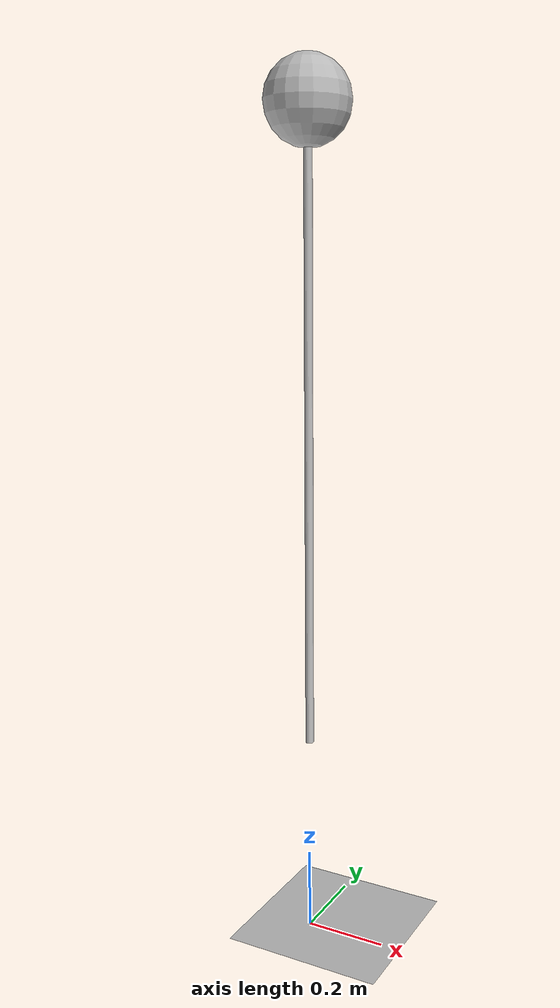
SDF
<?xml version="1.0"?>
<sdf version="1.6">
  <world name="default">
    <physics name="default_physics" default="0" type="ode">
      <max_step_size>0.001</max_step_size>
      <real_time_factor>1</real_time_factor>
      <real_time_update_rate>1000</real_time_update_rate>
      <ode>
        <solver>
          <type>quick</type>
          <iters>50</iters>
          <sor>1.0</sor> <!-- Important, see issue #2209 -->
          <use_dynamic_moi_rescaling>false</use_dynamic_moi_rescaling>
        </solver>
      </ode>
    </physics>
    <include>
      <uri>model://ground_plane</uri>
    </include>
    <include>
      <uri>model://sun</uri>
    </include>
    <model name="model_1">
      <link name="link_1">
        <pose>0 0 2.0 0 0 0</pose>
        <inertial>
          <inertia>
            <ixx>0.100000</ixx>
            <ixy>0.000000</ixy>
            <ixz>0.000000</ixz>
            <iyy>0.100000</iyy>
            <iyz>0.000000</iyz>
            <izz>0.100000</izz>
          </inertia>
          <mass>10.000000</mass>
        </inertial>
        <visual name="visual_sphere">
          <geometry>
            <sphere>
              <radius>0.100000</radius>
            </sphere>
          </geometry>
        </visual>
        <visual name="visual_cylinder">
          <pose>0 0 -0.75 0 0 0</pose>
          <geometry>
            <cylinder>
              <radius>0.0100000</radius>
              <length>1.5</length>
            </cylinder>
          </geometry>
        </visual>
        <collision name="collision_sphere">
          <max_contacts>250</max_contacts>
          <geometry>
            <sphere>
              <radius>0.100000</radius>
            </sphere>
          </geometry>
        </collision>
        <collision name="collision_cylinder">
          <max_contacts>250</max_contacts>
          <geometry>
            <cylinder>
              <radius>0.0100000</radius>
              <length>1.5</length>
            </cylinder>
          </geometry>
        </collision>
      </link>
      <joint name="joint_01" type="revolute">
        <parent>world</parent>
        <child>link_1</child>
        <pose>0 0 -1.5 0 0 0</pose>
        <axis>
          <limit>
            <lower>-1.57079</lower>
            <upper>1.57079</upper>
          </limit>
          <dynamics>
            <damping>0.000000</damping>
            <friction>0.000000</friction>
          </dynamics>
          <xyz>1.000000 0.000000 0.000000</xyz>
        </axis>
        <sensor name="force_torque" type="force_torque">
            <always_on>true</always_on>
            <update_rate>10</update_rate>
            <visualize>true</visualize>
            <topic>__default_topic__</topic>
            <plugin filename="libgazebo_ros_ft_sensor.so" name="ft_sensor">  加载的文件 可以使用locate  ibgazebo_ros_imu_sensor.so定位该文件位置
                <topicName>tf_joint1_1</topicName>             发布的话题
                <updateRateHZ>10.0</updateRateHZ>     更新sulv
                <gaussianNoise>0.0</gaussianNoise>     加入噪声
            </plugin>
        </sensor>

      </joint>
    </model>
  </world>
</sdf>
